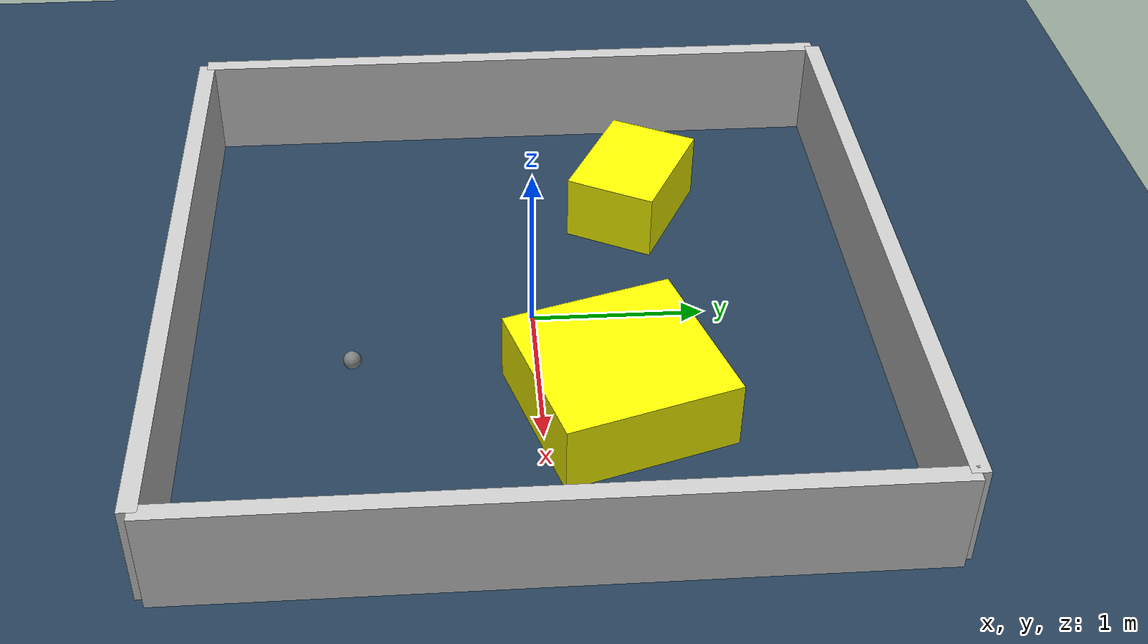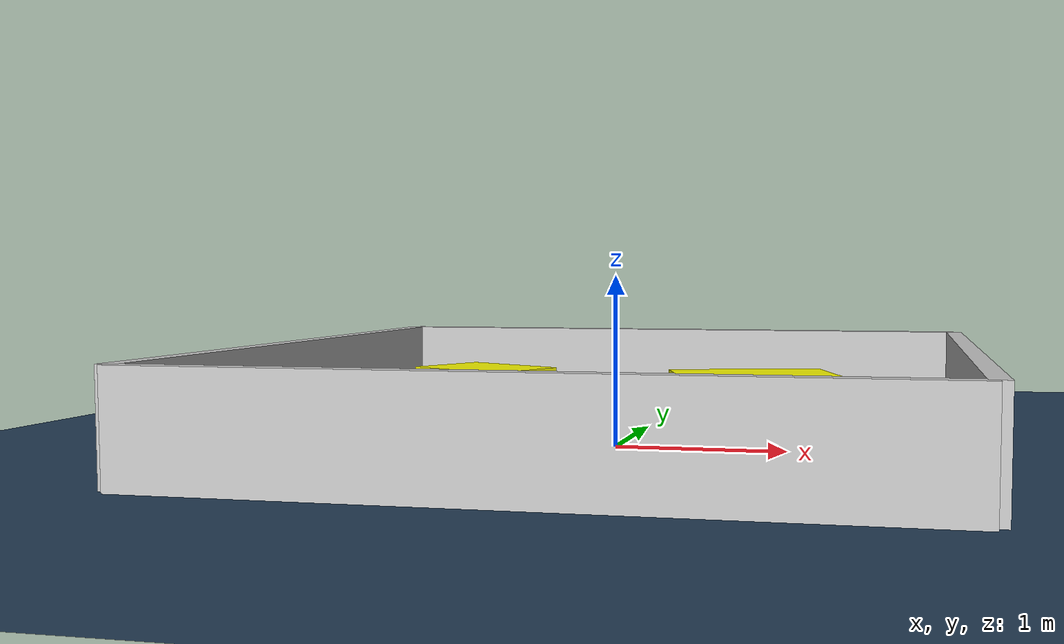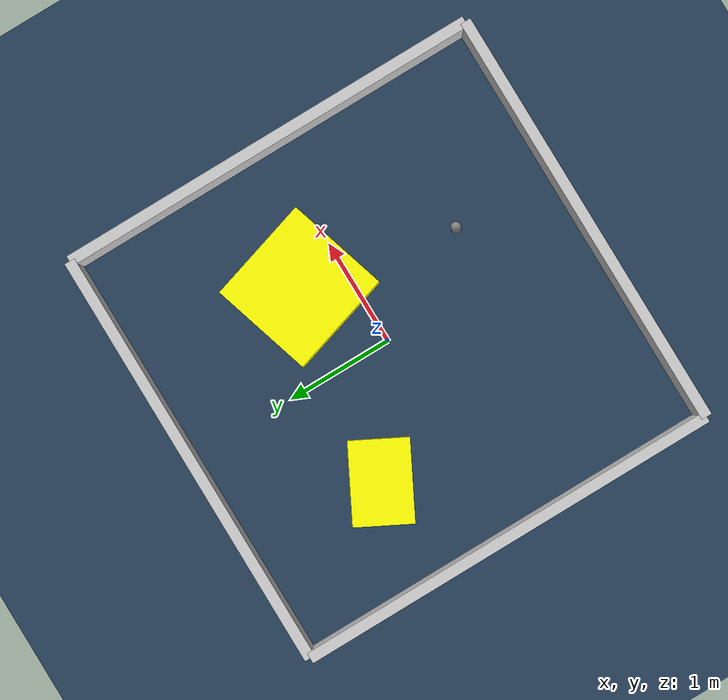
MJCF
<?xml version="1.0" ?>
<mujoco model="generated_environment">
  <option timestep="0.01" integrator="RK4" cone="elliptic"/>
  <default>
    <geom density="1"/>
  </default>
  <asset>
    <texture builtin="gradient" height="3072" rgb1="0.3 0.5 0.7" rgb2="0 0 0" type="skybox" width="512"/>
    <texture builtin="checker" height="300" mark="edge" markrgb="0.8 0.8 0.8" name="groundplane" rgb1="0.2 0.3 0.4" rgb2="0.1 0.2 0.3" type="2d" width="300"/>
    <material name="groundplane" reflectance="0.2" texrepeat="5 5" texture="groundplane" texuniform="true"/>
    <material name="robot" rgba="0.0 1.0 0.0 1"/>
  </asset>
  <worldbody>
    <light dir="0 0 -1" directional="true" pos="0 0 1.5"/>
    <geom condim="4" friction="1.0 0.005 0.001" material="groundplane" name="floor" size="0 0 0.05" type="plane"/>
    <body name="walls">
      <geom name="wall_1" condim="4" pos="-2.0 0.0 0.3" rgba="0.800000011920929 0.800000011920929 0.800000011920929 1.0" size="0.05 2.0 0.3" type="box"/>
      <geom name="wall_2" condim="4" pos="2.0 0.0 0.3" rgba="0.800000011920929 0.800000011920929 0.800000011920929 1.0" size="0.05 2.0 0.3" type="box"/>
      <geom name="wall_3" condim="4" pos="0.0 -2.0 0.3" rgba="0.800000011920929 0.800000011920929 0.800000011920929 1.0" size="2.0 0.05 0.3" type="box"/>
      <geom name="wall_4" condim="4" pos="0.0 2.0 0.3" rgba="0.800000011920929 0.800000011920929 0.800000011920929 1.0" size="2.0 0.05 0.3" type="box"/>
    </body>
    <body name="robot">
      <joint name="joint_x" type="slide" pos="0 0 0" axis="1 0 0"/>
      <joint name="joint_y" type="slide" pos="0 0 0" axis="0 1 0"/>
      <geom name="robot" type="sphere" pos="0.5344670702926213 -1.0235555722067549 0.2" size="0.05" mass="5." friction="1.0 0.005 0.0001" condim="4"/>
      <site name="sensor_ball"/>
    </body>
    <body name="obstacle_1_movable">
      <geom name="obstacle_1_movable" condim="4" pos="-1.0280443999482407 0.6926991395337891 0.2" euler="0 0 62.312332632707005" friction="1.0 0.005 0.001" rgba="1 1 0 1" size="0.2745920448715744 0.3782911317414852 0.2" type="box" mass="0.1"/>
      <joint type="free"/>
    </body>
    <body name="obstacle_2_movable">
      <geom name="obstacle_2_movable" condim="4" pos="0.7918617302989484 0.42155693693958574 0.2" euler="0 0 286.8965945636737" friction="1.0 0.005 0.001" rgba="1 1 0 1" size="0.5000029416704094 0.48687543262623906 0.2" type="box" mass="0.1"/>
      <joint type="free"/>
    </body>
  </worldbody>
  <actuator>
    <motor name="actuator_x" joint="joint_x" gear="1" ctrlrange="-1 1"/>
    <motor name="actuator_y" joint="joint_y" gear="1" ctrlrange="-1 1"/>
  </actuator>
</mujoco>
